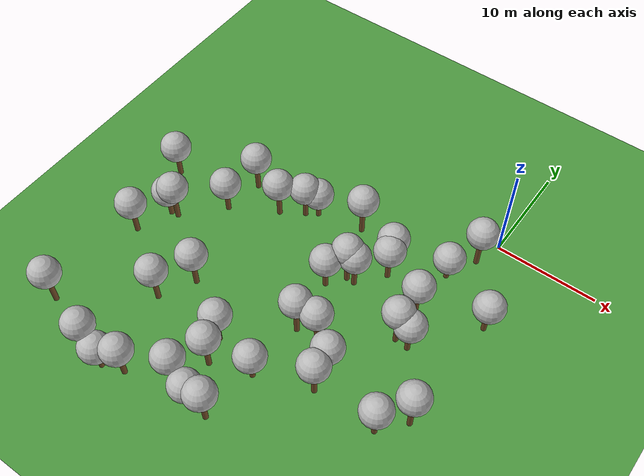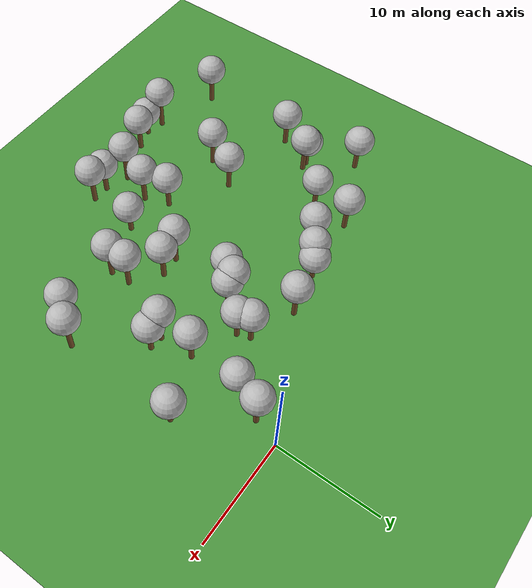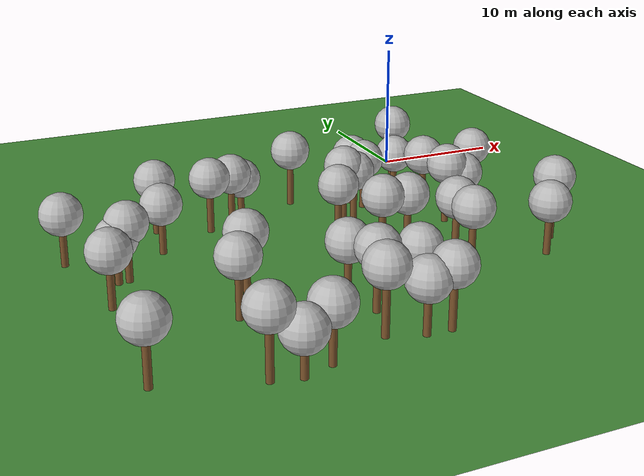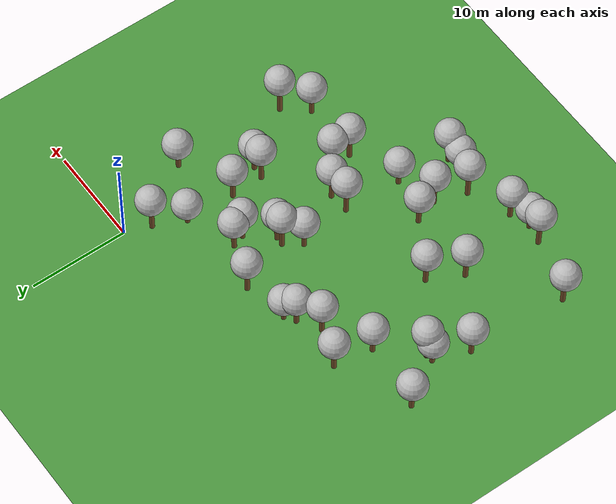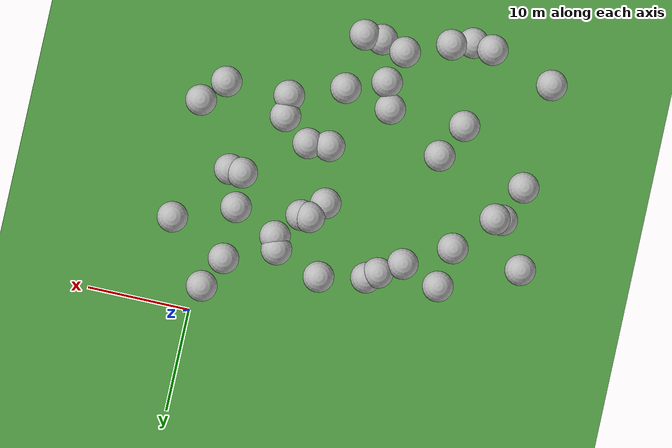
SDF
<sdf version="1.5">
 <world name="default">
  <model name="tree_simple418">
   <static>1</static>
   <link name="link">
    <pose>0 0 0.1 0 -0 0</pose>
    <collision name="collision_trunk">
     <pose>0 0 2 0 -0 0</pose>
     <geometry><cylinder><radius>0.25</radius><length>4</length></cylinder></geometry>
    </collision>
    <collision name="collision_treetop">
     <pose>0 0 5.2 0 -0 0</pose>
     <geometry><sphere><radius>1.5</radius></sphere></geometry>
    </collision>
    <visual name="trunk">
     <pose>0 0 2 0 -0 0</pose>
     <geometry><cylinder><radius>0.25</radius><length>4</length></cylinder></geometry>
     <material>
      <script>
       <uri>model://tree_simple/scripts</uri>
       <uri>model://tree_simple/materials/textures</uri>
       <name>TreeSimple/Trunk</name>
      </script>
     </material>
    </visual>
    <visual name="treetop">
     <pose>0 0 5.2 0 -0 0</pose>
     <geometry><sphere><radius>1.5</radius></sphere></geometry>
     <material>
      <script>
       <uri>model://tree_simple/scripts</uri>
       <uri>model://tree_simple/materials/textures</uri>
       <name>TreeSimple/Treetop</name>
      </script>
     </material>
    </visual>
   </link>
   <pose>-22.9841604277 -7.39292719752 -1.2316913310319737 0 -0 0</pose>
  </model>
  <model name="tree_simple415">
   <static>1</static>
   <link name="link">
    <pose>0 0 0.1 0 -0 0</pose>
    <collision name="collision_trunk">
     <pose>0 0 2 0 -0 0</pose>
     <geometry><cylinder><radius>0.25</radius><length>4</length></cylinder></geometry>
    </collision>
    <collision name="collision_treetop">
     <pose>0 0 5.2 0 -0 0</pose>
     <geometry><sphere><radius>1.5</radius></sphere></geometry>
    </collision>
    <visual name="trunk">
     <pose>0 0 2 0 -0 0</pose>
     <geometry><cylinder><radius>0.25</radius><length>4</length></cylinder></geometry>
     <material>
      <script>
       <uri>model://tree_simple/scripts</uri>
       <uri>model://tree_simple/materials/textures</uri>
       <name>TreeSimple/Trunk</name>
      </script>
     </material>
    </visual>
    <visual name="treetop">
     <pose>0 0 5.2 0 -0 0</pose>
     <geometry><sphere><radius>1.5</radius></sphere></geometry>
     <material>
      <script>
       <uri>model://tree_simple/scripts</uri>
       <uri>model://tree_simple/materials/textures</uri>
       <name>TreeSimple/Treetop</name>
      </script>
     </material>
    </visual>
   </link>
   <pose>-11.6355979465 -5.8252534874 -0.9304858775069449 0 -0 0</pose>
  </model>
  <model name="tree_simple395">
   <static>1</static>
   <link name="link">
    <pose>0 0 0.1 0 -0 0</pose>
    <collision name="collision_trunk">
     <pose>0 0 2 0 -0 0</pose>
     <geometry><cylinder><radius>0.25</radius><length>4</length></cylinder></geometry>
    </collision>
    <collision name="collision_treetop">
     <pose>0 0 5.2 0 -0 0</pose>
     <geometry><sphere><radius>1.5</radius></sphere></geometry>
    </collision>
    <visual name="trunk">
     <pose>0 0 2 0 -0 0</pose>
     <geometry><cylinder><radius>0.25</radius><length>4</length></cylinder></geometry>
     <material>
      <script>
       <uri>model://tree_simple/scripts</uri>
       <uri>model://tree_simple/materials/textures</uri>
       <name>TreeSimple/Trunk</name>
      </script>
     </material>
    </visual>
    <visual name="treetop">
     <pose>0 0 5.2 0 -0 0</pose>
     <geometry><sphere><radius>1.5</radius></sphere></geometry>
     <material>
      <script>
       <uri>model://tree_simple/scripts</uri>
       <uri>model://tree_simple/materials/textures</uri>
       <name>TreeSimple/Treetop</name>
      </script>
     </material>
    </visual>
   </link>
   <pose>-14.8909068885 -23.0244241553 -1.3048563724168187 0 -0 0</pose>
  </model>
  <model name="tree_simple392">
   <static>1</static>
   <link name="link">
    <pose>0 0 0.1 0 -0 0</pose>
    <collision name="collision_trunk">
     <pose>0 0 2 0 -0 0</pose>
     <geometry><cylinder><radius>0.25</radius><length>4</length></cylinder></geometry>
    </collision>
    <collision name="collision_treetop">
     <pose>0 0 5.2 0 -0 0</pose>
     <geometry><sphere><radius>1.5</radius></sphere></geometry>
    </collision>
    <visual name="trunk">
     <pose>0 0 2 0 -0 0</pose>
     <geometry><cylinder><radius>0.25</radius><length>4</length></cylinder></geometry>
     <material>
      <script>
       <uri>model://tree_simple/scripts</uri>
       <uri>model://tree_simple/materials/textures</uri>
       <name>TreeSimple/Trunk</name>
      </script>
     </material>
    </visual>
    <visual name="treetop">
     <pose>0 0 5.2 0 -0 0</pose>
     <geometry><sphere><radius>1.5</radius></sphere></geometry>
     <material>
      <script>
       <uri>model://tree_simple/scripts</uri>
       <uri>model://tree_simple/materials/textures</uri>
       <name>TreeSimple/Treetop</name>
      </script>
     </material>
    </visual>
   </link>
   <pose>-2.49227665262 -10.6347787598 -1.0672674202162444 0 -0 0</pose>
  </model>
  <model name="tree_simple386">
   <static>1</static>
   <link name="link">
    <pose>0 0 0.1 0 -0 0</pose>
    <collision name="collision_trunk">
     <pose>0 0 2 0 -0 0</pose>
     <geometry><cylinder><radius>0.25</radius><length>4</length></cylinder></geometry>
    </collision>
    <collision name="collision_treetop">
     <pose>0 0 5.2 0 -0 0</pose>
     <geometry><sphere><radius>1.5</radius></sphere></geometry>
    </collision>
    <visual name="trunk">
     <pose>0 0 2 0 -0 0</pose>
     <geometry><cylinder><radius>0.25</radius><length>4</length></cylinder></geometry>
     <material>
      <script>
       <uri>model://tree_simple/scripts</uri>
       <uri>model://tree_simple/materials/textures</uri>
       <name>TreeSimple/Trunk</name>
      </script>
     </material>
    </visual>
    <visual name="treetop">
     <pose>0 0 5.2 0 -0 0</pose>
     <geometry><sphere><radius>1.5</radius></sphere></geometry>
     <material>
      <script>
       <uri>model://tree_simple/scripts</uri>
       <uri>model://tree_simple/materials/textures</uri>
       <name>TreeSimple/Treetop</name>
      </script>
     </material>
    </visual>
   </link>
   <pose>-19.2490777258 -8.77456979873 -1.165046126300048 0 -0 0</pose>
  </model>
  <model name="tree_simple371">
   <static>1</static>
   <link name="link">
    <pose>0 0 0.1 0 -0 0</pose>
    <collision name="collision_trunk">
     <pose>0 0 2 0 -0 0</pose>
     <geometry><cylinder><radius>0.25</radius><length>4</length></cylinder></geometry>
    </collision>
    <collision name="collision_treetop">
     <pose>0 0 5.2 0 -0 0</pose>
     <geometry><sphere><radius>1.5</radius></sphere></geometry>
    </collision>
    <visual name="trunk">
     <pose>0 0 2 0 -0 0</pose>
     <geometry><cylinder><radius>0.25</radius><length>4</length></cylinder></geometry>
     <material>
      <script>
       <uri>model://tree_simple/scripts</uri>
       <uri>model://tree_simple/materials/textures</uri>
       <name>TreeSimple/Trunk</name>
      </script>
     </material>
    </visual>
    <visual name="treetop">
     <pose>0 0 5.2 0 -0 0</pose>
     <geometry><sphere><radius>1.5</radius></sphere></geometry>
     <material>
      <script>
       <uri>model://tree_simple/scripts</uri>
       <uri>model://tree_simple/materials/textures</uri>
       <name>TreeSimple/Treetop</name>
      </script>
     </material>
    </visual>
   </link>
   <pose>-15.0952400949 -28.608477139 -0.6281565399406825 0 -0 0</pose>
  </model>
  <model name="tree_simple364">
   <static>1</static>
   <link name="link">
    <pose>0 0 0.1 0 -0 0</pose>
    <collision name="collision_trunk">
     <pose>0 0 2 0 -0 0</pose>
     <geometry><cylinder><radius>0.25</radius><length>4</length></cylinder></geometry>
    </collision>
    <collision name="collision_treetop">
     <pose>0 0 5.2 0 -0 0</pose>
     <geometry><sphere><radius>1.5</radius></sphere></geometry>
    </collision>
    <visual name="trunk">
     <pose>0 0 2 0 -0 0</pose>
     <geometry><cylinder><radius>0.25</radius><length>4</length></cylinder></geometry>
     <material>
      <script>
       <uri>model://tree_simple/scripts</uri>
       <uri>model://tree_simple/materials/textures</uri>
       <name>TreeSimple/Trunk</name>
      </script>
     </material>
    </visual>
    <visual name="treetop">
     <pose>0 0 5.2 0 -0 0</pose>
     <geometry><sphere><radius>1.5</radius></sphere></geometry>
     <material>
      <script>
       <uri>model://tree_simple/scripts</uri>
       <uri>model://tree_simple/materials/textures</uri>
       <name>TreeSimple/Treetop</name>
      </script>
     </material>
    </visual>
   </link>
   <pose>-5.23612591395 -20.1562951187 -0.8840795200937943 0 -0 0</pose>
  </model>
  <model name="tree_simple349">
   <static>1</static>
   <link name="link">
    <pose>0 0 0.1 0 -0 0</pose>
    <collision name="collision_trunk">
     <pose>0 0 2 0 -0 0</pose>
     <geometry><cylinder><radius>0.25</radius><length>4</length></cylinder></geometry>
    </collision>
    <collision name="collision_treetop">
     <pose>0 0 5.2 0 -0 0</pose>
     <geometry><sphere><radius>1.5</radius></sphere></geometry>
    </collision>
    <visual name="trunk">
     <pose>0 0 2 0 -0 0</pose>
     <geometry><cylinder><radius>0.25</radius><length>4</length></cylinder></geometry>
     <material>
      <script>
       <uri>model://tree_simple/scripts</uri>
       <uri>model://tree_simple/materials/textures</uri>
       <name>TreeSimple/Trunk</name>
      </script>
     </material>
    </visual>
    <visual name="treetop">
     <pose>0 0 5.2 0 -0 0</pose>
     <geometry><sphere><radius>1.5</radius></sphere></geometry>
     <material>
      <script>
       <uri>model://tree_simple/scripts</uri>
       <uri>model://tree_simple/materials/textures</uri>
       <name>TreeSimple/Treetop</name>
      </script>
     </material>
    </visual>
   </link>
   <pose>-20.4686708935 -19.6389151122 -1.0486296070309347 0 -0 0</pose>
  </model>
  <model name="tree_simple347">
   <static>1</static>
   <link name="link">
    <pose>0 0 0.1 0 -0 0</pose>
    <collision name="collision_trunk">
     <pose>0 0 2 0 -0 0</pose>
     <geometry><cylinder><radius>0.25</radius><length>4</length></cylinder></geometry>
    </collision>
    <collision name="collision_treetop">
     <pose>0 0 5.2 0 -0 0</pose>
     <geometry><sphere><radius>1.5</radius></sphere></geometry>
    </collision>
    <visual name="trunk">
     <pose>0 0 2 0 -0 0</pose>
     <geometry><cylinder><radius>0.25</radius><length>4</length></cylinder></geometry>
     <material>
      <script>
       <uri>model://tree_simple/scripts</uri>
       <uri>model://tree_simple/materials/textures</uri>
       <name>TreeSimple/Trunk</name>
      </script>
     </material>
    </visual>
    <visual name="treetop">
     <pose>0 0 5.2 0 -0 0</pose>
     <geometry><sphere><radius>1.5</radius></sphere></geometry>
     <material>
      <script>
       <uri>model://tree_simple/scripts</uri>
       <uri>model://tree_simple/materials/textures</uri>
       <name>TreeSimple/Treetop</name>
      </script>
     </material>
    </visual>
   </link>
   <pose>-10.2981062424 -24.1175281228 -1.9855944410633 0 -0 0</pose>
  </model>
  <model name="tree_simple322">
   <static>1</static>
   <link name="link">
    <pose>0 0 0.1 0 -0 0</pose>
    <collision name="collision_trunk">
     <pose>0 0 2 0 -0 0</pose>
     <geometry><cylinder><radius>0.25</radius><length>4</length></cylinder></geometry>
    </collision>
    <collision name="collision_treetop">
     <pose>0 0 5.2 0 -0 0</pose>
     <geometry><sphere><radius>1.5</radius></sphere></geometry>
    </collision>
    <visual name="trunk">
     <pose>0 0 2 0 -0 0</pose>
     <geometry><cylinder><radius>0.25</radius><length>4</length></cylinder></geometry>
     <material>
      <script>
       <uri>model://tree_simple/scripts</uri>
       <uri>model://tree_simple/materials/textures</uri>
       <name>TreeSimple/Trunk</name>
      </script>
     </material>
    </visual>
    <visual name="treetop">
     <pose>0 0 5.2 0 -0 0</pose>
     <geometry><sphere><radius>1.5</radius></sphere></geometry>
     <material>
      <script>
       <uri>model://tree_simple/scripts</uri>
       <uri>model://tree_simple/materials/textures</uri>
       <name>TreeSimple/Treetop</name>
      </script>
     </material>
    </visual>
   </link>
   <pose>-10.7837387112 -12.8598856653 -1.5683118547232284 0 -0 0</pose>
  </model>
  <model name="tree_simple317">
   <static>1</static>
   <link name="link">
    <pose>0 0 0.1 0 -0 0</pose>
    <collision name="collision_trunk">
     <pose>0 0 2 0 -0 0</pose>
     <geometry><cylinder><radius>0.25</radius><length>4</length></cylinder></geometry>
    </collision>
    <collision name="collision_treetop">
     <pose>0 0 5.2 0 -0 0</pose>
     <geometry><sphere><radius>1.5</radius></sphere></geometry>
    </collision>
    <visual name="trunk">
     <pose>0 0 2 0 -0 0</pose>
     <geometry><cylinder><radius>0.25</radius><length>4</length></cylinder></geometry>
     <material>
      <script>
       <uri>model://tree_simple/scripts</uri>
       <uri>model://tree_simple/materials/textures</uri>
       <name>TreeSimple/Trunk</name>
      </script>
     </material>
    </visual>
    <visual name="treetop">
     <pose>0 0 5.2 0 -0 0</pose>
     <geometry><sphere><radius>1.5</radius></sphere></geometry>
     <material>
      <script>
       <uri>model://tree_simple/scripts</uri>
       <uri>model://tree_simple/materials/textures</uri>
       <name>TreeSimple/Treetop</name>
      </script>
     </material>
    </visual>
   </link>
   <pose>1.01183279708 -22.2370296953 -1.4106299939162041 0 -0 0</pose>
  </model>
  <model name="tree_simple303">
   <static>1</static>
   <link name="link">
    <pose>0 0 0.1 0 -0 0</pose>
    <collision name="collision_trunk">
     <pose>0 0 2 0 -0 0</pose>
     <geometry><cylinder><radius>0.25</radius><length>4</length></cylinder></geometry>
    </collision>
    <collision name="collision_treetop">
     <pose>0 0 5.2 0 -0 0</pose>
     <geometry><sphere><radius>1.5</radius></sphere></geometry>
    </collision>
    <visual name="trunk">
     <pose>0 0 2 0 -0 0</pose>
     <geometry><cylinder><radius>0.25</radius><length>4</length></cylinder></geometry>
     <material>
      <script>
       <uri>model://tree_simple/scripts</uri>
       <uri>model://tree_simple/materials/textures</uri>
       <name>TreeSimple/Trunk</name>
      </script>
     </material>
    </visual>
    <visual name="treetop">
     <pose>0 0 5.2 0 -0 0</pose>
     <geometry><sphere><radius>1.5</radius></sphere></geometry>
     <material>
      <script>
       <uri>model://tree_simple/scripts</uri>
       <uri>model://tree_simple/materials/textures</uri>
       <name>TreeSimple/Treetop</name>
      </script>
     </material>
    </visual>
   </link>
   <pose>-9.56094886719 -11.2139048457 -0.7981017525668597 0 -0 0</pose>
  </model>
  <model name="tree_simple276">
   <static>1</static>
   <link name="link">
    <pose>0 0 0.1 0 -0 0</pose>
    <collision name="collision_trunk">
     <pose>0 0 2 0 -0 0</pose>
     <geometry><cylinder><radius>0.25</radius><length>4</length></cylinder></geometry>
    </collision>
    <collision name="collision_treetop">
     <pose>0 0 5.2 0 -0 0</pose>
     <geometry><sphere><radius>1.5</radius></sphere></geometry>
    </collision>
    <visual name="trunk">
     <pose>0 0 2 0 -0 0</pose>
     <geometry><cylinder><radius>0.25</radius><length>4</length></cylinder></geometry>
     <material>
      <script>
       <uri>model://tree_simple/scripts</uri>
       <uri>model://tree_simple/materials/textures</uri>
       <name>TreeSimple/Trunk</name>
      </script>
     </material>
    </visual>
    <visual name="treetop">
     <pose>0 0 5.2 0 -0 0</pose>
     <geometry><sphere><radius>1.5</radius></sphere></geometry>
     <material>
      <script>
       <uri>model://tree_simple/scripts</uri>
       <uri>model://tree_simple/materials/textures</uri>
       <name>TreeSimple/Treetop</name>
      </script>
     </material>
    </visual>
   </link>
   <pose>-29.5152065305 -28.5569261037 -1.0949963064572632 0 -0 0</pose>
  </model>
  <model name="tree_simple272">
   <static>1</static>
   <link name="link">
    <pose>0 0 0.1 0 -0 0</pose>
    <collision name="collision_trunk">
     <pose>0 0 2 0 -0 0</pose>
     <geometry><cylinder><radius>0.25</radius><length>4</length></cylinder></geometry>
    </collision>
    <collision name="collision_treetop">
     <pose>0 0 5.2 0 -0 0</pose>
     <geometry><sphere><radius>1.5</radius></sphere></geometry>
    </collision>
    <visual name="trunk">
     <pose>0 0 2 0 -0 0</pose>
     <geometry><cylinder><radius>0.25</radius><length>4</length></cylinder></geometry>
     <material>
      <script>
       <uri>model://tree_simple/scripts</uri>
       <uri>model://tree_simple/materials/textures</uri>
       <name>TreeSimple/Trunk</name>
      </script>
     </material>
    </visual>
    <visual name="treetop">
     <pose>0 0 5.2 0 -0 0</pose>
     <geometry><sphere><radius>1.5</radius></sphere></geometry>
     <material>
      <script>
       <uri>model://tree_simple/scripts</uri>
       <uri>model://tree_simple/materials/textures</uri>
       <name>TreeSimple/Treetop</name>
      </script>
     </material>
    </visual>
   </link>
   <pose>-28.9961141051 -18.3973115949 -1.3680143926209636 0 -0 0</pose>
  </model>
  <model name="tree_simple268">
   <static>1</static>
   <link name="link">
    <pose>0 0 0.1 0 -0 0</pose>
    <collision name="collision_trunk">
     <pose>0 0 2 0 -0 0</pose>
     <geometry><cylinder><radius>0.25</radius><length>4</length></cylinder></geometry>
    </collision>
    <collision name="collision_treetop">
     <pose>0 0 5.2 0 -0 0</pose>
     <geometry><sphere><radius>1.5</radius></sphere></geometry>
    </collision>
    <visual name="trunk">
     <pose>0 0 2 0 -0 0</pose>
     <geometry><cylinder><radius>0.25</radius><length>4</length></cylinder></geometry>
     <material>
      <script>
       <uri>model://tree_simple/scripts</uri>
       <uri>model://tree_simple/materials/textures</uri>
       <name>TreeSimple/Trunk</name>
      </script>
     </material>
    </visual>
    <visual name="treetop">
     <pose>0 0 5.2 0 -0 0</pose>
     <geometry><sphere><radius>1.5</radius></sphere></geometry>
     <material>
      <script>
       <uri>model://tree_simple/scripts</uri>
       <uri>model://tree_simple/materials/textures</uri>
       <name>TreeSimple/Treetop</name>
      </script>
     </material>
    </visual>
   </link>
   <pose>-9.9717965144 -18.2645258901 -0.6768851967742087 0 -0 0</pose>
  </model>
  <model name="tree_simple262">
   <static>1</static>
   <link name="link">
    <pose>0 0 0.1 0 -0 0</pose>
    <collision name="collision_trunk">
     <pose>0 0 2 0 -0 0</pose>
     <geometry><cylinder><radius>0.25</radius><length>4</length></cylinder></geometry>
    </collision>
    <collision name="collision_treetop">
     <pose>0 0 5.2 0 -0 0</pose>
     <geometry><sphere><radius>1.5</radius></sphere></geometry>
    </collision>
    <visual name="trunk">
     <pose>0 0 2 0 -0 0</pose>
     <geometry><cylinder><radius>0.25</radius><length>4</length></cylinder></geometry>
     <material>
      <script>
       <uri>model://tree_simple/scripts</uri>
       <uri>model://tree_simple/materials/textures</uri>
       <name>TreeSimple/Trunk</name>
      </script>
     </material>
    </visual>
    <visual name="treetop">
     <pose>0 0 5.2 0 -0 0</pose>
     <geometry><sphere><radius>1.5</radius></sphere></geometry>
     <material>
      <script>
       <uri>model://tree_simple/scripts</uri>
       <uri>model://tree_simple/materials/textures</uri>
       <name>TreeSimple/Treetop</name>
      </script>
     </material>
    </visual>
   </link>
   <pose>-23.2560890967 -30.6191265847 -0.736532495558236 0 -0 0</pose>
  </model>
  <model name="tree_simple253">
   <static>1</static>
   <link name="link">
    <pose>0 0 0.1 0 -0 0</pose>
    <collision name="collision_trunk">
     <pose>0 0 2 0 -0 0</pose>
     <geometry><cylinder><radius>0.25</radius><length>4</length></cylinder></geometry>
    </collision>
    <collision name="collision_treetop">
     <pose>0 0 5.2 0 -0 0</pose>
     <geometry><sphere><radius>1.5</radius></sphere></geometry>
    </collision>
    <visual name="trunk">
     <pose>0 0 2 0 -0 0</pose>
     <geometry><cylinder><radius>0.25</radius><length>4</length></cylinder></geometry>
     <material>
      <script>
       <uri>model://tree_simple/scripts</uri>
       <uri>model://tree_simple/materials/textures</uri>
       <name>TreeSimple/Trunk</name>
      </script>
     </material>
    </visual>
    <visual name="treetop">
     <pose>0 0 5.2 0 -0 0</pose>
     <geometry><sphere><radius>1.5</radius></sphere></geometry>
     <material>
      <script>
       <uri>model://tree_simple/scripts</uri>
       <uri>model://tree_simple/materials/textures</uri>
       <name>TreeSimple/Treetop</name>
      </script>
     </material>
    </visual>
   </link>
   <pose>-6.71887912458 -8.7537434381 -1.4236169795518892 0 -0 0</pose>
  </model>
  <model name="tree_simple234">
   <static>1</static>
   <link name="link">
    <pose>0 0 0.1 0 -0 0</pose>
    <collision name="collision_trunk">
     <pose>0 0 2 0 -0 0</pose>
     <geometry><cylinder><radius>0.25</radius><length>4</length></cylinder></geometry>
    </collision>
    <collision name="collision_treetop">
     <pose>0 0 5.2 0 -0 0</pose>
     <geometry><sphere><radius>1.5</radius></sphere></geometry>
    </collision>
    <visual name="trunk">
     <pose>0 0 2 0 -0 0</pose>
     <geometry><cylinder><radius>0.25</radius><length>4</length></cylinder></geometry>
     <material>
      <script>
       <uri>model://tree_simple/scripts</uri>
       <uri>model://tree_simple/materials/textures</uri>
       <name>TreeSimple/Trunk</name>
      </script>
     </material>
    </visual>
    <visual name="treetop">
     <pose>0 0 5.2 0 -0 0</pose>
     <geometry><sphere><radius>1.5</radius></sphere></geometry>
     <material>
      <script>
       <uri>model://tree_simple/scripts</uri>
       <uri>model://tree_simple/materials/textures</uri>
       <name>TreeSimple/Treetop</name>
      </script>
     </material>
    </visual>
   </link>
   <pose>-7.13671903639 -7.51188908491 -1.3363328956470142 0 -0 0</pose>
  </model>
  <model name="tree_simple201">
   <static>1</static>
   <link name="link">
    <pose>0 0 0.1 0 -0 0</pose>
    <collision name="collision_trunk">
     <pose>0 0 2 0 -0 0</pose>
     <geometry><cylinder><radius>0.25</radius><length>4</length></cylinder></geometry>
    </collision>
    <collision name="collision_treetop">
     <pose>0 0 5.2 0 -0 0</pose>
     <geometry><sphere><radius>1.5</radius></sphere></geometry>
    </collision>
    <visual name="trunk">
     <pose>0 0 2 0 -0 0</pose>
     <geometry><cylinder><radius>0.25</radius><length>4</length></cylinder></geometry>
     <material>
      <script>
       <uri>model://tree_simple/scripts</uri>
       <uri>model://tree_simple/materials/textures</uri>
       <name>TreeSimple/Trunk</name>
      </script>
     </material>
    </visual>
    <visual name="treetop">
     <pose>0 0 5.2 0 -0 0</pose>
     <geometry><sphere><radius>1.5</radius></sphere></geometry>
     <material>
      <script>
       <uri>model://tree_simple/scripts</uri>
       <uri>model://tree_simple/materials/textures</uri>
       <name>TreeSimple/Treetop</name>
      </script>
     </material>
    </visual>
   </link>
   <pose>-16.1062713361 -6.72563548396 -2.285663693092008 0 -0 0</pose>
  </model>
  <model name="tree_simple200">
   <static>1</static>
   <link name="link">
    <pose>0 0 0.1 0 -0 0</pose>
    <collision name="collision_trunk">
     <pose>0 0 2 0 -0 0</pose>
     <geometry><cylinder><radius>0.25</radius><length>4</length></cylinder></geometry>
    </collision>
    <collision name="collision_treetop">
     <pose>0 0 5.2 0 -0 0</pose>
     <geometry><sphere><radius>1.5</radius></sphere></geometry>
    </collision>
    <visual name="trunk">
     <pose>0 0 2 0 -0 0</pose>
     <geometry><cylinder><radius>0.25</radius><length>4</length></cylinder></geometry>
     <material>
      <script>
       <uri>model://tree_simple/scripts</uri>
       <uri>model://tree_simple/materials/textures</uri>
       <name>TreeSimple/Trunk</name>
      </script>
     </material>
    </visual>
    <visual name="treetop">
     <pose>0 0 5.2 0 -0 0</pose>
     <geometry><sphere><radius>1.5</radius></sphere></geometry>
     <material>
      <script>
       <uri>model://tree_simple/scripts</uri>
       <uri>model://tree_simple/materials/textures</uri>
       <name>TreeSimple/Treetop</name>
      </script>
     </material>
    </visual>
   </link>
   <pose>-22.1853775811 -22.9371972628 -1.0680691399828635 0 -0 0</pose>
  </model>
  <model name="tree_simple195">
   <static>1</static>
   <link name="link">
    <pose>0 0 0.1 0 -0 0</pose>
    <collision name="collision_trunk">
     <pose>0 0 2 0 -0 0</pose>
     <geometry><cylinder><radius>0.25</radius><length>4</length></cylinder></geometry>
    </collision>
    <collision name="collision_treetop">
     <pose>0 0 5.2 0 -0 0</pose>
     <geometry><sphere><radius>1.5</radius></sphere></geometry>
    </collision>
    <visual name="trunk">
     <pose>0 0 2 0 -0 0</pose>
     <geometry><cylinder><radius>0.25</radius><length>4</length></cylinder></geometry>
     <material>
      <script>
       <uri>model://tree_simple/scripts</uri>
       <uri>model://tree_simple/materials/textures</uri>
       <name>TreeSimple/Trunk</name>
      </script>
     </material>
    </visual>
    <visual name="treetop">
     <pose>0 0 5.2 0 -0 0</pose>
     <geometry><sphere><radius>1.5</radius></sphere></geometry>
     <material>
      <script>
       <uri>model://tree_simple/scripts</uri>
       <uri>model://tree_simple/materials/textures</uri>
       <name>TreeSimple/Treetop</name>
      </script>
     </material>
    </visual>
   </link>
   <pose>2.97634626893 -19.931363898 -0.5837008030219334 0 -0 0</pose>
  </model>
  <model name="tree_simple194">
   <static>1</static>
   <link name="link">
    <pose>0 0 0.1 0 -0 0</pose>
    <collision name="collision_trunk">
     <pose>0 0 2 0 -0 0</pose>
     <geometry><cylinder><radius>0.25</radius><length>4</length></cylinder></geometry>
    </collision>
    <collision name="collision_treetop">
     <pose>0 0 5.2 0 -0 0</pose>
     <geometry><sphere><radius>1.5</radius></sphere></geometry>
    </collision>
    <visual name="trunk">
     <pose>0 0 2 0 -0 0</pose>
     <geometry><cylinder><radius>0.25</radius><length>4</length></cylinder></geometry>
     <material>
      <script>
       <uri>model://tree_simple/scripts</uri>
       <uri>model://tree_simple/materials/textures</uri>
       <name>TreeSimple/Trunk</name>
      </script>
     </material>
    </visual>
    <visual name="treetop">
     <pose>0 0 5.2 0 -0 0</pose>
     <geometry><sphere><radius>1.5</radius></sphere></geometry>
     <material>
      <script>
       <uri>model://tree_simple/scripts</uri>
       <uri>model://tree_simple/materials/textures</uri>
       <name>TreeSimple/Treetop</name>
      </script>
     </material>
    </visual>
   </link>
   <pose>-23.6189562951 -11.2622665902 -1.657396896101285 0 -0 0</pose>
  </model>
  <model name="tree_simple166">
   <static>1</static>
   <link name="link">
    <pose>0 0 0.1 0 -0 0</pose>
    <collision name="collision_trunk">
     <pose>0 0 2 0 -0 0</pose>
     <geometry><cylinder><radius>0.25</radius><length>4</length></cylinder></geometry>
    </collision>
    <collision name="collision_treetop">
     <pose>0 0 5.2 0 -0 0</pose>
     <geometry><sphere><radius>1.5</radius></sphere></geometry>
    </collision>
    <visual name="trunk">
     <pose>0 0 2 0 -0 0</pose>
     <geometry><cylinder><radius>0.25</radius><length>4</length></cylinder></geometry>
     <material>
      <script>
       <uri>model://tree_simple/scripts</uri>
       <uri>model://tree_simple/materials/textures</uri>
       <name>TreeSimple/Trunk</name>
      </script>
     </material>
    </visual>
    <visual name="treetop">
     <pose>0 0 5.2 0 -0 0</pose>
     <geometry><sphere><radius>1.5</radius></sphere></geometry>
     <material>
      <script>
       <uri>model://tree_simple/scripts</uri>
       <uri>model://tree_simple/materials/textures</uri>
       <name>TreeSimple/Treetop</name>
      </script>
     </material>
    </visual>
   </link>
   <pose>-19.3381588268 -30.3399867983 -1.3986468049619134 0 -0 0</pose>
  </model>
  <model name="tree_simple155">
   <static>1</static>
   <link name="link">
    <pose>0 0 0.1 0 -0 0</pose>
    <collision name="collision_trunk">
     <pose>0 0 2 0 -0 0</pose>
     <geometry><cylinder><radius>0.25</radius><length>4</length></cylinder></geometry>
    </collision>
    <collision name="collision_treetop">
     <pose>0 0 5.2 0 -0 0</pose>
     <geometry><sphere><radius>1.5</radius></sphere></geometry>
    </collision>
    <visual name="trunk">
     <pose>0 0 2 0 -0 0</pose>
     <geometry><cylinder><radius>0.25</radius><length>4</length></cylinder></geometry>
     <material>
      <script>
       <uri>model://tree_simple/scripts</uri>
       <uri>model://tree_simple/materials/textures</uri>
       <name>TreeSimple/Trunk</name>
      </script>
     </material>
    </visual>
    <visual name="treetop">
     <pose>0 0 5.2 0 -0 0</pose>
     <geometry><sphere><radius>1.5</radius></sphere></geometry>
     <material>
      <script>
       <uri>model://tree_simple/scripts</uri>
       <uri>model://tree_simple/materials/textures</uri>
       <name>TreeSimple/Treetop</name>
      </script>
     </material>
    </visual>
   </link>
   <pose>-2.3717624472 -13.9733365428 -0.7814272627860382 0 -0 0</pose>
  </model>
  <model name="tree_simple154">
   <static>1</static>
   <link name="link">
    <pose>0 0 0.1 0 -0 0</pose>
    <collision name="collision_trunk">
     <pose>0 0 2 0 -0 0</pose>
     <geometry><cylinder><radius>0.25</radius><length>4</length></cylinder></geometry>
    </collision>
    <collision name="collision_treetop">
     <pose>0 0 5.2 0 -0 0</pose>
     <geometry><sphere><radius>1.5</radius></sphere></geometry>
    </collision>
    <visual name="trunk">
     <pose>0 0 2 0 -0 0</pose>
     <geometry><cylinder><radius>0.25</radius><length>4</length></cylinder></geometry>
     <material>
      <script>
       <uri>model://tree_simple/scripts</uri>
       <uri>model://tree_simple/materials/textures</uri>
       <name>TreeSimple/Trunk</name>
      </script>
     </material>
    </visual>
    <visual name="treetop">
     <pose>0 0 5.2 0 -0 0</pose>
     <geometry><sphere><radius>1.5</radius></sphere></geometry>
     <material>
      <script>
       <uri>model://tree_simple/scripts</uri>
       <uri>model://tree_simple/materials/textures</uri>
       <name>TreeSimple/Treetop</name>
      </script>
     </material>
    </visual>
   </link>
   <pose>3.295584565 -8.44091810905 -1.758246093069893 0 -0 0</pose>
  </model>
  <model name="tree_simple152">
   <static>1</static>
   <link name="link">
    <pose>0 0 0.1 0 -0 0</pose>
    <collision name="collision_trunk">
     <pose>0 0 2 0 -0 0</pose>
     <geometry><cylinder><radius>0.25</radius><length>4</length></cylinder></geometry>
    </collision>
    <collision name="collision_treetop">
     <pose>0 0 5.2 0 -0 0</pose>
     <geometry><sphere><radius>1.5</radius></sphere></geometry>
    </collision>
    <visual name="trunk">
     <pose>0 0 2 0 -0 0</pose>
     <geometry><cylinder><radius>0.25</radius><length>4</length></cylinder></geometry>
     <material>
      <script>
       <uri>model://tree_simple/scripts</uri>
       <uri>model://tree_simple/materials/textures</uri>
       <name>TreeSimple/Trunk</name>
      </script>
     </material>
    </visual>
    <visual name="treetop">
     <pose>0 0 5.2 0 -0 0</pose>
     <geometry><sphere><radius>1.5</radius></sphere></geometry>
     <material>
      <script>
       <uri>model://tree_simple/scripts</uri>
       <uri>model://tree_simple/materials/textures</uri>
       <name>TreeSimple/Treetop</name>
      </script>
     </material>
    </visual>
   </link>
   <pose>-12.7268570034 -29.4125065477 -1.6269537555188598 0 -0 0</pose>
  </model>
  <model name="tree_simple149">
   <static>1</static>
   <link name="link">
    <pose>0 0 0.1 0 -0 0</pose>
    <collision name="collision_trunk">
     <pose>0 0 2 0 -0 0</pose>
     <geometry><cylinder><radius>0.25</radius><length>4</length></cylinder></geometry>
    </collision>
    <collision name="collision_treetop">
     <pose>0 0 5.2 0 -0 0</pose>
     <geometry><sphere><radius>1.5</radius></sphere></geometry>
    </collision>
    <visual name="trunk">
     <pose>0 0 2 0 -0 0</pose>
     <geometry><cylinder><radius>0.25</radius><length>4</length></cylinder></geometry>
     <material>
      <script>
       <uri>model://tree_simple/scripts</uri>
       <uri>model://tree_simple/materials/textures</uri>
       <name>TreeSimple/Trunk</name>
      </script>
     </material>
    </visual>
    <visual name="treetop">
     <pose>0 0 5.2 0 -0 0</pose>
     <geometry><sphere><radius>1.5</radius></sphere></geometry>
     <material>
      <script>
       <uri>model://tree_simple/scripts</uri>
       <uri>model://tree_simple/materials/textures</uri>
       <name>TreeSimple/Treetop</name>
      </script>
     </material>
    </visual>
   </link>
   <pose>-30.3771264781 -10.615045033 -1.5410513890960789 0 -0 0</pose>
  </model>
  <model name="tree_simple140">
   <static>1</static>
   <link name="link">
    <pose>0 0 0.1 0 -0 0</pose>
    <collision name="collision_trunk">
     <pose>0 0 2 0 -0 0</pose>
     <geometry><cylinder><radius>0.25</radius><length>4</length></cylinder></geometry>
    </collision>
    <collision name="collision_treetop">
     <pose>0 0 5.2 0 -0 0</pose>
     <geometry><sphere><radius>1.5</radius></sphere></geometry>
    </collision>
    <visual name="trunk">
     <pose>0 0 2 0 -0 0</pose>
     <geometry><cylinder><radius>0.25</radius><length>4</length></cylinder></geometry>
     <material>
      <script>
       <uri>model://tree_simple/scripts</uri>
       <uri>model://tree_simple/materials/textures</uri>
       <name>TreeSimple/Trunk</name>
      </script>
     </material>
    </visual>
    <visual name="treetop">
     <pose>0 0 5.2 0 -0 0</pose>
     <geometry><sphere><radius>1.5</radius></sphere></geometry>
     <material>
      <script>
       <uri>model://tree_simple/scripts</uri>
       <uri>model://tree_simple/materials/textures</uri>
       <name>TreeSimple/Treetop</name>
      </script>
     </material>
    </visual>
   </link>
   <pose>-1.08104360216 -14.0922455385 -1.5589836179966652 0 -0 0</pose>
  </model>
  <model name="tree_simple138">
   <static>1</static>
   <link name="link">
    <pose>0 0 0.1 0 -0 0</pose>
    <collision name="collision_trunk">
     <pose>0 0 2 0 -0 0</pose>
     <geometry><cylinder><radius>0.25</radius><length>4</length></cylinder></geometry>
    </collision>
    <collision name="collision_treetop">
     <pose>0 0 5.2 0 -0 0</pose>
     <geometry><sphere><radius>1.5</radius></sphere></geometry>
    </collision>
    <visual name="trunk">
     <pose>0 0 2 0 -0 0</pose>
     <geometry><cylinder><radius>0.25</radius><length>4</length></cylinder></geometry>
     <material>
      <script>
       <uri>model://tree_simple/scripts</uri>
       <uri>model://tree_simple/materials/textures</uri>
       <name>TreeSimple/Trunk</name>
      </script>
     </material>
    </visual>
    <visual name="treetop">
     <pose>0 0 5.2 0 -0 0</pose>
     <geometry><sphere><radius>1.5</radius></sphere></geometry>
     <material>
      <script>
       <uri>model://tree_simple/scripts</uri>
       <uri>model://tree_simple/materials/textures</uri>
       <name>TreeSimple/Treetop</name>
      </script>
     </material>
    </visual>
   </link>
   <pose>-8.7404095495 -11.2488158501 -1.2921917036841986 0 -0 0</pose>
  </model>
  <model name="tree_simple106">
   <static>1</static>
   <link name="link">
    <pose>0 0 0.1 0 -0 0</pose>
    <collision name="collision_trunk">
     <pose>0 0 2 0 -0 0</pose>
     <geometry><cylinder><radius>0.25</radius><length>4</length></cylinder></geometry>
    </collision>
    <collision name="collision_treetop">
     <pose>0 0 5.2 0 -0 0</pose>
     <geometry><sphere><radius>1.5</radius></sphere></geometry>
    </collision>
    <visual name="trunk">
     <pose>0 0 2 0 -0 0</pose>
     <geometry><cylinder><radius>0.25</radius><length>4</length></cylinder></geometry>
     <material>
      <script>
       <uri>model://tree_simple/scripts</uri>
       <uri>model://tree_simple/materials/textures</uri>
       <name>TreeSimple/Trunk</name>
      </script>
     </material>
    </visual>
    <visual name="treetop">
     <pose>0 0 5.2 0 -0 0</pose>
     <geometry><sphere><radius>1.5</radius></sphere></geometry>
     <material>
      <script>
       <uri>model://tree_simple/scripts</uri>
       <uri>model://tree_simple/materials/textures</uri>
       <name>TreeSimple/Treetop</name>
      </script>
     </material>
    </visual>
   </link>
   <pose>-0.906213194622 -2.57618131058 -0.9516131608679441 0 -0 0</pose>
  </model>
  <model name="tree_simple89">
   <static>1</static>
   <link name="link">
    <pose>0 0 0.1 0 -0 0</pose>
    <collision name="collision_trunk">
     <pose>0 0 2 0 -0 0</pose>
     <geometry><cylinder><radius>0.25</radius><length>4</length></cylinder></geometry>
    </collision>
    <collision name="collision_treetop">
     <pose>0 0 5.2 0 -0 0</pose>
     <geometry><sphere><radius>1.5</radius></sphere></geometry>
    </collision>
    <visual name="trunk">
     <pose>0 0 2 0 -0 0</pose>
     <geometry><cylinder><radius>0.25</radius><length>4</length></cylinder></geometry>
     <material>
      <script>
       <uri>model://tree_simple/scripts</uri>
       <uri>model://tree_simple/materials/textures</uri>
       <name>TreeSimple/Trunk</name>
      </script>
     </material>
    </visual>
    <visual name="treetop">
     <pose>0 0 5.2 0 -0 0</pose>
     <geometry><sphere><radius>1.5</radius></sphere></geometry>
     <material>
      <script>
       <uri>model://tree_simple/scripts</uri>
       <uri>model://tree_simple/materials/textures</uri>
       <name>TreeSimple/Treetop</name>
      </script>
     </material>
    </visual>
   </link>
   <pose>-14.0445145291 -25.4354437198 -0.9289813361999681 0 -0 0</pose>
  </model>
  <model name="tree_simple76">
   <static>1</static>
   <link name="link">
    <pose>0 0 0.1 0 -0 0</pose>
    <collision name="collision_trunk">
     <pose>0 0 2 0 -0 0</pose>
     <geometry><cylinder><radius>0.25</radius><length>4</length></cylinder></geometry>
    </collision>
    <collision name="collision_treetop">
     <pose>0 0 5.2 0 -0 0</pose>
     <geometry><sphere><radius>1.5</radius></sphere></geometry>
    </collision>
    <visual name="trunk">
     <pose>0 0 2 0 -0 0</pose>
     <geometry><cylinder><radius>0.25</radius><length>4</length></cylinder></geometry>
     <material>
      <script>
       <uri>model://tree_simple/scripts</uri>
       <uri>model://tree_simple/materials/textures</uri>
       <name>TreeSimple/Trunk</name>
      </script>
     </material>
    </visual>
    <visual name="treetop">
     <pose>0 0 5.2 0 -0 0</pose>
     <geometry><sphere><radius>1.5</radius></sphere></geometry>
     <material>
      <script>
       <uri>model://tree_simple/scripts</uri>
       <uri>model://tree_simple/materials/textures</uri>
       <name>TreeSimple/Treetop</name>
      </script>
     </material>
    </visual>
   </link>
   <pose>-27.7086729522 -14.9466841588 -2.0849890529651103 0 -0 0</pose>
  </model>
  <model name="tree_simple64">
   <static>1</static>
   <link name="link">
    <pose>0 0 0.1 0 -0 0</pose>
    <collision name="collision_trunk">
     <pose>0 0 2 0 -0 0</pose>
     <geometry><cylinder><radius>0.25</radius><length>4</length></cylinder></geometry>
    </collision>
    <collision name="collision_treetop">
     <pose>0 0 5.2 0 -0 0</pose>
     <geometry><sphere><radius>1.5</radius></sphere></geometry>
    </collision>
    <visual name="trunk">
     <pose>0 0 2 0 -0 0</pose>
     <geometry><cylinder><radius>0.25</radius><length>4</length></cylinder></geometry>
     <material>
      <script>
       <uri>model://tree_simple/scripts</uri>
       <uri>model://tree_simple/materials/textures</uri>
       <name>TreeSimple/Trunk</name>
      </script>
     </material>
    </visual>
    <visual name="treetop">
     <pose>0 0 5.2 0 -0 0</pose>
     <geometry><sphere><radius>1.5</radius></sphere></geometry>
     <material>
      <script>
       <uri>model://tree_simple/scripts</uri>
       <uri>model://tree_simple/materials/textures</uri>
       <name>TreeSimple/Treetop</name>
      </script>
     </material>
    </visual>
   </link>
   <pose>-5.16461725533 -22.1747780475 -0.8878365799362902 0 -0 0</pose>
  </model>
  <model name="tree_simple50">
   <static>1</static>
   <link name="link">
    <pose>0 0 0.1 0 -0 0</pose>
    <collision name="collision_trunk">
     <pose>0 0 2 0 -0 0</pose>
     <geometry><cylinder><radius>0.25</radius><length>4</length></cylinder></geometry>
    </collision>
    <collision name="collision_treetop">
     <pose>0 0 5.2 0 -0 0</pose>
     <geometry><sphere><radius>1.5</radius></sphere></geometry>
    </collision>
    <visual name="trunk">
     <pose>0 0 2 0 -0 0</pose>
     <geometry><cylinder><radius>0.25</radius><length>4</length></cylinder></geometry>
     <material>
      <script>
       <uri>model://tree_simple/scripts</uri>
       <uri>model://tree_simple/materials/textures</uri>
       <name>TreeSimple/Trunk</name>
      </script>
     </material>
    </visual>
    <visual name="treetop">
     <pose>0 0 5.2 0 -0 0</pose>
     <geometry><sphere><radius>1.5</radius></sphere></geometry>
     <material>
      <script>
       <uri>model://tree_simple/scripts</uri>
       <uri>model://tree_simple/materials/textures</uri>
       <name>TreeSimple/Treetop</name>
      </script>
     </material>
    </visual>
   </link>
   <pose>-11.0023085291 -29.4422071398 -1.0048988993691208 0 -0 0</pose>
  </model>
  <model name="tree_simple37">
   <static>1</static>
   <link name="link">
    <pose>0 0 0.1 0 -0 0</pose>
    <collision name="collision_trunk">
     <pose>0 0 2 0 -0 0</pose>
     <geometry><cylinder><radius>0.25</radius><length>4</length></cylinder></geometry>
    </collision>
    <collision name="collision_treetop">
     <pose>0 0 5.2 0 -0 0</pose>
     <geometry><sphere><radius>1.5</radius></sphere></geometry>
    </collision>
    <visual name="trunk">
     <pose>0 0 2 0 -0 0</pose>
     <geometry><cylinder><radius>0.25</radius><length>4</length></cylinder></geometry>
     <material>
      <script>
       <uri>model://tree_simple/scripts</uri>
       <uri>model://tree_simple/materials/textures</uri>
       <name>TreeSimple/Trunk</name>
      </script>
     </material>
    </visual>
    <visual name="treetop">
     <pose>0 0 5.2 0 -0 0</pose>
     <geometry><sphere><radius>1.5</radius></sphere></geometry>
     <material>
      <script>
       <uri>model://tree_simple/scripts</uri>
       <uri>model://tree_simple/materials/textures</uri>
       <name>TreeSimple/Treetop</name>
      </script>
     </material>
    </visual>
   </link>
   <pose>-17.1200971999 -7.42377639458 -1.5801436188640143 0 -0 0</pose>
  </model>
  <model name="tree_simple18">
   <static>1</static>
   <link name="link">
    <pose>0 0 0.1 0 -0 0</pose>
    <collision name="collision_trunk">
     <pose>0 0 2 0 -0 0</pose>
     <geometry><cylinder><radius>0.25</radius><length>4</length></cylinder></geometry>
    </collision>
    <collision name="collision_treetop">
     <pose>0 0 5.2 0 -0 0</pose>
     <geometry><sphere><radius>1.5</radius></sphere></geometry>
    </collision>
    <visual name="trunk">
     <pose>0 0 2 0 -0 0</pose>
     <geometry><cylinder><radius>0.25</radius><length>4</length></cylinder></geometry>
     <material>
      <script>
       <uri>model://tree_simple/scripts</uri>
       <uri>model://tree_simple/materials/textures</uri>
       <name>TreeSimple/Trunk</name>
      </script>
     </material>
    </visual>
    <visual name="treetop">
     <pose>0 0 5.2 0 -0 0</pose>
     <geometry><sphere><radius>1.5</radius></sphere></geometry>
     <material>
      <script>
       <uri>model://tree_simple/scripts</uri>
       <uri>model://tree_simple/materials/textures</uri>
       <name>TreeSimple/Treetop</name>
      </script>
     </material>
    </visual>
   </link>
   <pose>-7.91294561281 -18.0894598626 -0.902225916899787 0 -0 0</pose>
  </model>
  <model name="tree_simple14">
   <static>1</static>
   <link name="link">
    <pose>0 0 0.1 0 -0 0</pose>
    <collision name="collision_trunk">
     <pose>0 0 2 0 -0 0</pose>
     <geometry><cylinder><radius>0.25</radius><length>4</length></cylinder></geometry>
    </collision>
    <collision name="collision_treetop">
     <pose>0 0 5.2 0 -0 0</pose>
     <geometry><sphere><radius>1.5</radius></sphere></geometry>
    </collision>
    <visual name="trunk">
     <pose>0 0 2 0 -0 0</pose>
     <geometry><cylinder><radius>0.25</radius><length>4</length></cylinder></geometry>
     <material>
      <script>
       <uri>model://tree_simple/scripts</uri>
       <uri>model://tree_simple/materials/textures</uri>
       <name>TreeSimple/Trunk</name>
      </script>
     </material>
    </visual>
    <visual name="treetop">
     <pose>0 0 5.2 0 -0 0</pose>
     <geometry><sphere><radius>1.5</radius></sphere></geometry>
     <material>
      <script>
       <uri>model://tree_simple/scripts</uri>
       <uri>model://tree_simple/materials/textures</uri>
       <name>TreeSimple/Treetop</name>
      </script>
     </material>
    </visual>
   </link>
   <pose>-26.972464012 -14.858879135 -1.1555456287072092 0 -0 0</pose>
  </model>
  <model name="tree_simple2">
   <static>1</static>
   <link name="link">
    <pose>0 0 0.1 0 -0 0</pose>
    <collision name="collision_trunk">
     <pose>0 0 2 0 -0 0</pose>
     <geometry><cylinder><radius>0.25</radius><length>4</length></cylinder></geometry>
    </collision>
    <collision name="collision_treetop">
     <pose>0 0 5.2 0 -0 0</pose>
     <geometry><sphere><radius>1.5</radius></sphere></geometry>
    </collision>
    <visual name="trunk">
     <pose>0 0 2 0 -0 0</pose>
     <geometry><cylinder><radius>0.25</radius><length>4</length></cylinder></geometry>
     <material>
      <script>
       <uri>model://tree_simple/scripts</uri>
       <uri>model://tree_simple/materials/textures</uri>
       <name>TreeSimple/Trunk</name>
      </script>
     </material>
    </visual>
    <visual name="treetop">
     <pose>0 0 5.2 0 -0 0</pose>
     <geometry><sphere><radius>1.5</radius></sphere></geometry>
     <material>
      <script>
       <uri>model://tree_simple/scripts</uri>
       <uri>model://tree_simple/materials/textures</uri>
       <name>TreeSimple/Treetop</name>
      </script>
     </material>
    </visual>
   </link>
   <pose>-2.32374702534 -5.59991455471 -2.5 0 -0 0</pose>
  </model>
  <model name="tree_simple0">
   <static>1</static>
   <link name="link">
    <pose>0 0 0.1 0 -0 0</pose>
    <collision name="collision_trunk">
     <pose>0 0 2 0 -0 0</pose>
     <geometry><cylinder><radius>0.25</radius><length>4</length></cylinder></geometry>
    </collision>
    <collision name="collision_treetop">
     <pose>0 0 5.2 0 -0 0</pose>
     <geometry><sphere><radius>1.5</radius></sphere></geometry>
    </collision>
    <visual name="trunk">
     <pose>0 0 2 0 -0 0</pose>
     <geometry><cylinder><radius>0.25</radius><length>4</length></cylinder></geometry>
     <material>
      <script>
       <uri>model://tree_simple/scripts</uri>
       <uri>model://tree_simple/materials/textures</uri>
       <name>TreeSimple/Trunk</name>
      </script>
     </material>
    </visual>
    <visual name="treetop">
     <pose>0 0 5.2 0 -0 0</pose>
     <geometry><sphere><radius>1.5</radius></sphere></geometry>
     <material>
      <script>
       <uri>model://tree_simple/scripts</uri>
       <uri>model://tree_simple/materials/textures</uri>
       <name>TreeSimple/Treetop</name>
      </script>
     </material>
    </visual>
   </link>
   <pose>-21.3714553001 -31.0269025129 -2.2514356900182575 0 -0 0</pose>
  </model>
  <model name="ground_plane">
   <static>true</static>
   <link name="link">
    <collision name="collision">
     <geometry><plane><normal>0 0 1</normal><size>250 250</size></plane></geometry>
     <surface><friction><ode><mu>1</mu><mu2>1</mu2></ode></friction></surface>
    </collision>
    <visual name="grass">
     <cast_shadows>false</cast_shadows>
     <geometry><plane><normal>0 0 1</normal><size>150 250</size></plane></geometry>
     <material>
      <script><uri>file://media/materials/scripts/Gazebo.material</uri><name>Gazebo/Grass</name></script>
     </material>
    </visual>
   </link>
  </model>
 </world>
</sdf>
